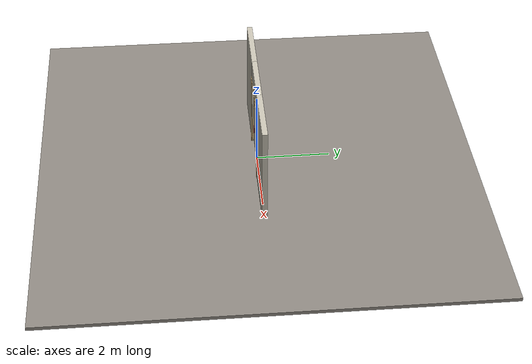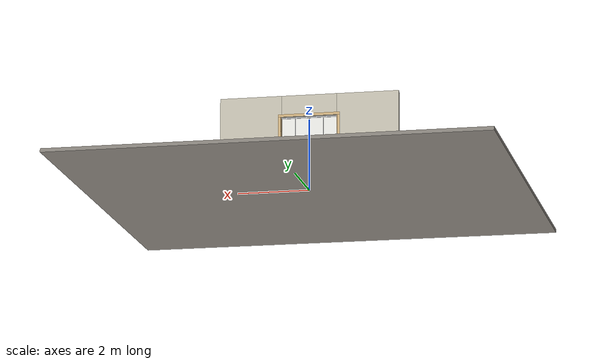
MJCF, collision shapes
<?xml version="1.0" ?>
<mujoco model="db0372_bifold_full">
  <compiler angle="radian" meshdir="../../hardware" texturedir="../../textures" autolimits="true" inertiafromgeom="false"/>
  <option timestep="0.002" integrator="implicitfast" cone="elliptic" impratio="10" noslip_iterations="3">
    <flag multiccd="enable"/>
  </option>
  <size memory="16M"/>
  <default>
    <geom condim="4" solref="0.005 1" solimp="0.95 0.99 0.001"/>
    <joint solreflimit="0.005 1" solimplimit="0.95 0.99 0.001"/>
    <tendon solreflimit="0.005 1"/>
    <equality solref="0.002 1"/>
  </default>
  <visual>
    <headlight ambient="0.4 0.4 0.4" diffuse="0.7 0.7 0.7" specular="0.2 0.2 0.2"/>
    <quality shadowsize="4096"/>
    <map znear="0.01" zfar="60"/>
  </visual>
  <asset>
    <mesh name="pull_1e5d69a91a" file="pull_1e5d69a91a.obj"/>
    <material name="mat_floor" rgba="0.55 0.53 0.5 1" specular="0.2" shininess="0.15" reflectance="0"/>
    <material name="mat_wall" rgba="0.78 0.76 0.7 1" specular="0.2" shininess="0.1" reflectance="0"/>
    <material name="mat_frame" rgba="0.82 0.7 0.5 1" specular="0.2" shininess="0.45" reflectance="0"/>
    <material name="mat_track" rgba="0.8 0.81 0.83 1" specular="0.8" shininess="0.6" reflectance="0.4"/>
    <material name="mat_hinge" rgba="0.65 0.66 0.68 1" specular="0.74" shininess="0.5" reflectance="0.36"/>
    <material name="mat_panel_0_0" rgba="0.93 0.93 0.91 1" specular="0.2" shininess="0.62" reflectance="0"/>
    <material name="mat_panel_0_1" rgba="0.93 0.93 0.91 1" specular="0.2" shininess="0.62" reflectance="0"/>
    <material name="mat_op_stainless" rgba="0.75 0.76 0.77 1" specular="0.8" shininess="0.65" reflectance="0.4"/>
    <material name="mat_panel_1_0" rgba="0.93 0.93 0.91 1" specular="0.2" shininess="0.62" reflectance="0"/>
    <material name="mat_panel_1_1" rgba="0.93 0.93 0.91 1" specular="0.2" shininess="0.62" reflectance="0"/>
    <texture name="skybox" type="skybox" builtin="gradient" rgb1="0.6 0.7 0.85" rgb2="0.9 0.92 0.95" width="256" height="256"/>
  </asset>
  <worldbody>
    <light name="sun" pos="1.5 -2.5 4" dir="-0.3 0.5 -0.8" directional="true" diffuse="0.8 0.8 0.8" specular="0.3 0.3 0.3" castshadow="true"/>
    <light name="fill" pos="-1.5 2.5 3" dir="0.3 -0.5 -0.7" directional="true" diffuse="0.35 0.35 0.4" castshadow="false"/>
    <camera name="robot_view" pos="0 -2.581563 1.766338" xyaxes="1 0 0 0 0.26963 0.962964" fovy="52"/>
    <camera name="far_view" pos="0 2.581563 1.766338" xyaxes="-1 0 0 0 -0.26963 0.962964" fovy="52"/>
    <camera name="iso" pos="1.961988 -2.168513 2.179388" xyaxes="0.741536 0.670913 0 -0.242917 0.268487 0.932151" fovy="46"/>
    <camera name="detail_handle" pos="0.115 -0.8775 1.28" xyaxes="0.97561 0.219512 0 -0.070934 0.315262 0.94635" fovy="38"/>
    <geom name="floor" type="box" size="6 6 0.05" pos="0 0 -0.05" material="mat_floor" group="0" contype="1" conaffinity="1" friction="0.8 0.005 0.0001" density="2400"/>
    <geom name="wall_left" type="box" size="0.86225 0.0725 1.35" pos="-1.63775 0 1.35" material="mat_wall" group="0" contype="1" conaffinity="1" friction="0.6 0.005 0.0001" density="800"/>
    <geom name="wall_right" type="box" size="0.86225 0.0725 1.35" pos="1.63775 0 1.35" material="mat_wall" group="0" contype="1" conaffinity="1" friction="0.6 0.005 0.0001" density="800"/>
    <geom name="wall_header" type="box" size="0.7755 0.0725 0.3065" pos="0 0 2.3935" material="mat_wall" group="0" contype="1" conaffinity="1" friction="0.6 0.005 0.0001" density="800"/>
    <geom name="jamb_hinge" type="box" size="0.0095 0.0725 1.0435" pos="-0.785 0 1.0435" material="mat_frame" group="0" contype="1" conaffinity="1" friction="0.6 0.005 0.0001" density="400"/>
    <geom name="jamb_strike" type="box" size="0.0095 0.0725 1.0435" pos="0.785 0 1.0435" material="mat_frame" group="0" contype="1" conaffinity="1" friction="0.6 0.005 0.0001" density="400"/>
    <geom name="stud_strike" type="box" size="0.015 0.0725 1.0435" pos="0.8095 0 1.0435" material="mat_wall" group="0" contype="1" conaffinity="1" friction="0.6 0.005 0.0001" density="500"/>
    <geom name="jamb_head" type="box" size="0.8095 0.0725 0.0095" pos="0.015 0 2.0965" material="mat_frame" group="0" contype="1" conaffinity="1" friction="0.6 0.005 0.0001" density="400"/>
    <geom name="head_stud" type="box" size="0.8095 0.0725 0.015" pos="0.015 0 2.121" material="mat_wall" group="0" contype="1" conaffinity="1" friction="0.6 0.005 0.0001" density="500"/>
    <geom name="casing_l_n" type="box" size="0.035 0.008 1.053" pos="-0.8245 -0.0805 1.0435" material="mat_frame" group="2" contype="0" conaffinity="0" density="400"/>
    <geom name="casing_r_n" type="box" size="0.035 0.008 1.053" pos="0.8245 -0.0805 1.0435" material="mat_frame" group="2" contype="0" conaffinity="0" density="400"/>
    <geom name="casing_h_n" type="box" size="0.8595 0.008 0.035" pos="0 -0.0805 2.136" material="mat_frame" group="2" contype="0" conaffinity="0" density="400"/>
    <geom name="casing_l_p" type="box" size="0.035 0.008 1.053" pos="-0.8245 0.0805 1.0435" material="mat_frame" group="2" contype="0" conaffinity="0" density="400"/>
    <geom name="casing_r_p" type="box" size="0.035 0.008 1.053" pos="0.8245 0.0805 1.0435" material="mat_frame" group="2" contype="0" conaffinity="0" density="400"/>
    <geom name="casing_h_p" type="box" size="0.8595 0.008 0.035" pos="0 0.0805 2.136" material="mat_frame" group="2" contype="0" conaffinity="0" density="400"/>
    <geom name="fold_track" type="box" size="0.7755 0.02 0.015" pos="0 0 2.072" material="mat_track" group="1" contype="0" conaffinity="0" density="2700"/>
    <site name="approach_point" pos="0 -1.5 0" quat="1 0 0 0" size="0.05" rgba="0.2 0.9 0.2 0.5" group="4"/>
    <site name="goal_point" pos="0 1.5 0" quat="1 0 0 0" size="0.05" rgba="0.2 0.9 0.2 0.5" group="4"/>
    <site name="door_plane_center" pos="0 0 1.0435" quat="1 0 0 0" size="0.02" rgba="0.2 0.9 0.2 0.5" group="4"/>
    <body name="panel_0_0" pos="-0.7755 0 0">
      <inertial pos="0.192916 0 1.042007" mass="5.586829" quat="0.499295 0.499295 -0.500704 0.500704" diaginertia="0.06484069 1.945481478 2.009187207"/>
      <joint name="panel_0_0_hinge" type="hinge" axis="0 0 -1" pos="0.035 0 0" limited="true" range="0 1.48353" damping="0.718313" frictionloss="2.188459" armature="0.02"/>
      <geom name="panel_0_0_slab" type="box" size="0.185145 0.0175 1.016" pos="0.193855 0 1.036" material="mat_panel_0_0" group="0" contype="1" conaffinity="1" friction="0.35 0.005 0.0001" density="1"/>
      <geom name="panel_0_0_pivot_pin" type="cylinder" size="0.008 0.0105" pos="0.035 0 2.0525" material="mat_hinge" group="1" contype="0" conaffinity="0" density="7850"/>
      <body name="panel_0_1" pos="0.381 0 0">
        <inertial pos="0.103612 -0.008702 1.025077" mass="5.904478" quat="0.555831 0.430376 -0.561021 0.437131" diaginertia="0.146344916 1.396434473 1.540966051"/>
        <joint name="panel_0_1_hinge" type="hinge" axis="0 0 -1" pos="0 0.0175 0" limited="true" range="-3.141593 0" damping="0.2" frictionloss="0.1" armature="0.005"/>
        <geom name="panel_0_1_slab" type="box" size="0.19375 0.0175 1.016" pos="0.19575 0 1.036" material="mat_panel_0_1" group="0" contype="1" conaffinity="1" friction="0.35 0.005 0.0001" density="1"/>
        <geom name="panel_0_1_knuckle" type="cylinder" size="0.0045 1.006" pos="0 0.0175 1.036" material="mat_hinge" group="1" contype="0" conaffinity="0" density="7850"/>
        <geom name="panel_0_1_pull_n" type="mesh" mesh="pull_1e5d69a91a" pos="0.3295 -0.0175 1" quat="0.707107 0.707107 0 0" material="mat_op_stainless" group="1" contype="0" conaffinity="0" density="3000"/>
        <geom name="panel_0_1_pull_col_n" type="capsule" size="0.0095 0.08" pos="0.3295 -0.0775 1" material="mat_op_stainless" group="3" contype="1" conaffinity="1" rgba="0.8 0.3 0.3 0.25" friction="0.7 0.01 0.0001" density="3000"/>
        <site name="panel_0_1_pull_grip_n" pos="0.3295 -0.0775 1" quat="1 0 0 0" size="0.012" rgba="0.2 0.9 0.2 0.5" group="4"/>
      </body>
    </body>
    <body name="panel_1_0" pos="0.7755 0 0">
      <inertial pos="-0.192916 0 1.042007" mass="5.586829" quat="0.499295 -0.499295 0.500704 0.500704" diaginertia="0.06484069 1.945481478 2.009187207"/>
      <joint name="panel_1_0_hinge" type="hinge" axis="0 0 1" pos="-0.035 0 0" limited="true" range="0 1.48353" damping="0.718313" frictionloss="2.188459" armature="0.02"/>
      <geom name="panel_1_0_slab" type="box" size="0.185145 0.0175 1.016" pos="-0.193855 0 1.036" material="mat_panel_1_0" group="0" contype="1" conaffinity="1" friction="0.35 0.005 0.0001" density="1"/>
      <geom name="panel_1_0_pivot_pin" type="cylinder" size="0.008 0.0105" pos="-0.035 0 2.0525" material="mat_hinge" group="1" contype="0" conaffinity="0" density="7850"/>
      <body name="panel_1_1" pos="-0.381 0 0">
        <inertial pos="-0.103612 -0.008702 1.025077" mass="5.904478" quat="0.437131 0.561021 -0.430376 0.555831" diaginertia="0.146344916 1.396434473 1.540966051"/>
        <joint name="panel_1_1_hinge" type="hinge" axis="0 0 1" pos="0 0.0175 0" limited="true" range="-3.141593 0" damping="0.2" frictionloss="0.1" armature="0.005"/>
        <geom name="panel_1_1_slab" type="box" size="0.19375 0.0175 1.016" pos="-0.19575 0 1.036" material="mat_panel_1_1" group="0" contype="1" conaffinity="1" friction="0.35 0.005 0.0001" density="1"/>
        <geom name="panel_1_1_knuckle" type="cylinder" size="0.0045 1.006" pos="0 0.0175 1.036" material="mat_hinge" group="1" contype="0" conaffinity="0" density="7850"/>
        <geom name="panel_1_1_pull_n" type="mesh" mesh="pull_1e5d69a91a" pos="-0.3295 -0.0175 1" quat="0 0 -0.707107 0.707107" material="mat_op_stainless" group="1" contype="0" conaffinity="0" density="3000"/>
        <geom name="panel_1_1_pull_col_n" type="capsule" size="0.0095 0.08" pos="-0.3295 -0.0775 1" material="mat_op_stainless" group="3" contype="1" conaffinity="1" rgba="0.8 0.3 0.3 0.25" friction="0.7 0.01 0.0001" density="3000"/>
        <site name="panel_1_1_pull_grip_n" pos="-0.3295 -0.0775 1" quat="1 0 0 0" size="0.012" rgba="0.2 0.9 0.2 0.5" group="4"/>
      </body>
    </body>
  </worldbody>
  <equality>
    <joint name="panel_0_1_couple" joint1="panel_0_1_hinge" joint2="panel_0_0_hinge" polycoef="0 -2 0 0 0" active="true"/>
    <joint name="panel_1_1_couple" joint1="panel_1_1_hinge" joint2="panel_1_0_hinge" polycoef="0 -2 0 0 0" active="true"/>
  </equality>
  <sensor>
    <jointpos name="panel_0_0_hinge_pos" joint="panel_0_0_hinge"/>
    <jointvel name="panel_0_0_hinge_vel" joint="panel_0_0_hinge"/>
    <jointpos name="panel_0_1_hinge_pos" joint="panel_0_1_hinge"/>
    <jointvel name="panel_0_1_hinge_vel" joint="panel_0_1_hinge"/>
    <jointpos name="panel_1_0_hinge_pos" joint="panel_1_0_hinge"/>
    <jointvel name="panel_1_0_hinge_vel" joint="panel_1_0_hinge"/>
    <jointpos name="panel_1_1_hinge_pos" joint="panel_1_1_hinge"/>
    <jointvel name="panel_1_1_hinge_vel" joint="panel_1_1_hinge"/>
  </sensor>
</mujoco>
